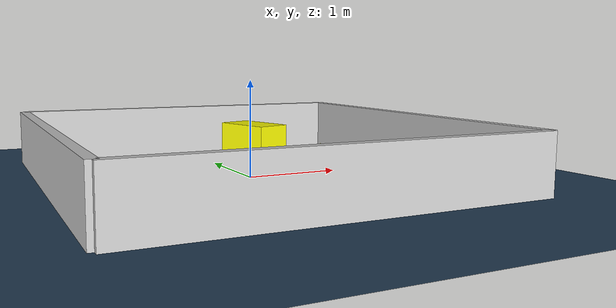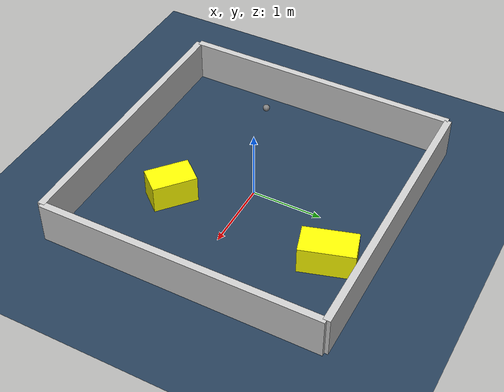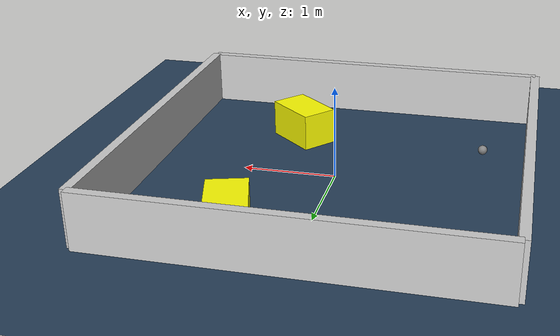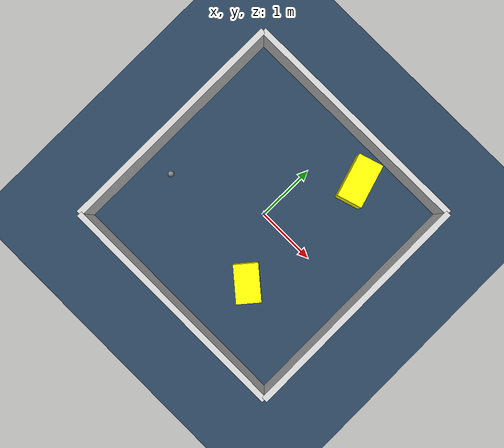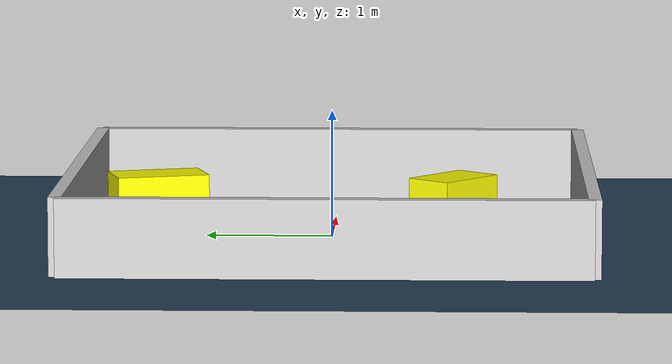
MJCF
<?xml version="1.0" ?>
<mujoco model="generated_environment">
  <option timestep="0.01" integrator="RK4" cone="elliptic"/>
  <default>
    <geom density="1"/>
  </default>
  <asset>
    <texture builtin="gradient" height="3072" rgb1="0.3 0.5 0.7" rgb2="0 0 0" type="skybox" width="512"/>
    <texture builtin="checker" height="300" mark="edge" markrgb="0.8 0.8 0.8" name="groundplane" rgb1="0.2 0.3 0.4" rgb2="0.1 0.2 0.3" type="2d" width="300"/>
    <material name="groundplane" reflectance="0.2" texrepeat="5 5" texture="groundplane" texuniform="true"/>
    <material name="robot" rgba="0.0 1.0 0.0 1"/>
  </asset>
  <worldbody>
    <light dir="0 0 -1" directional="true" pos="0 0 1.5"/>
    <geom condim="4" friction="1.0 0.005 0.001" material="groundplane" name="floor" size="0 0 0.05" type="plane"/>
    <body name="walls">
      <geom name="wall_1" condim="4" pos="-2.0 0.0 0.3" rgba="0.800000011920929 0.800000011920929 0.800000011920929 1.0" size="0.05 2.0 0.3" type="box"/>
      <geom name="wall_2" condim="4" pos="2.0 0.0 0.3" rgba="0.800000011920929 0.800000011920929 0.800000011920929 1.0" size="0.05 2.0 0.3" type="box"/>
      <geom name="wall_3" condim="4" pos="0.0 -2.0 0.3" rgba="0.800000011920929 0.800000011920929 0.800000011920929 1.0" size="2.0 0.05 0.3" type="box"/>
      <geom name="wall_4" condim="4" pos="0.0 2.0 0.3" rgba="0.800000011920929 0.800000011920929 0.800000011920929 1.0" size="2.0 0.05 0.3" type="box"/>
    </body>
    <body name="robot">
      <joint name="joint_x" type="slide" pos="0 0 0" axis="1 0 0"/>
      <joint name="joint_y" type="slide" pos="0 0 0" axis="0 1 0"/>
      <geom name="robot" type="sphere" pos="-1.506665317397868 -0.5949183839882961 0.2" size="0.05" mass="5." friction="1.0 0.005 0.0001" condim="4"/>
      <site name="sensor_ball"/>
    </body>
    <body name="obstacle_1_movable">
      <geom name="obstacle_1_movable" condim="4" pos="0.7038470168424611 1.4366961551466586 0.2" euler="0 0 196.93563808786666" friction="1.0 0.005 0.001" rgba="1 1 0 1" size="0.2112092536626038 0.37472111341145137 0.2" type="box" mass="0.1"/>
      <joint type="free"/>
    </body>
    <body name="obstacle_2_movable">
      <geom name="obstacle_2_movable" condim="4" pos="0.5822048706910237 -0.9558090579719413 0.2" euler="0 0 49.65446060380185" friction="1.0 0.005 0.001" rgba="1 1 0 1" size="0.20094625147796263 0.31205036861268065 0.2" type="box" mass="0.1"/>
      <joint type="free"/>
    </body>
  </worldbody>
  <actuator>
    <motor name="actuator_x" joint="joint_x" gear="1" ctrlrange="-1 1"/>
    <motor name="actuator_y" joint="joint_y" gear="1" ctrlrange="-1 1"/>
  </actuator>
</mujoco>
